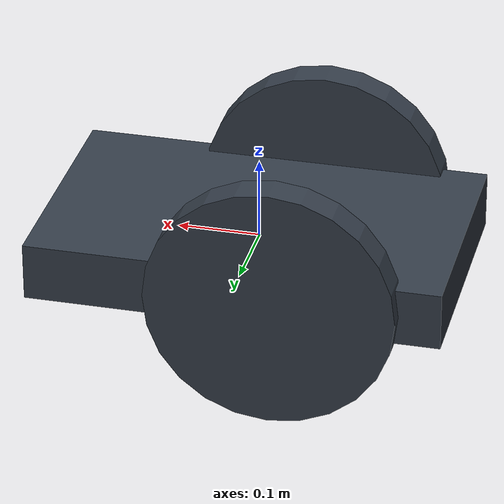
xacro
<?xml version="1.0" ?>
<robot name="simple2wheeler" xmlns:xacro="http://www.ros.org/wiki/xacro">
    <material name="blue">
        <color rgba="0.203 0.238 0.285 1.0"/>
    </material>

    <gazebo reference="link_chassis">
        <material>Gazebo/Orange</material>
    </gazebo>

<!-- diff driven commandTopic on node mistä komennot luetaan, tänne ohjataan ".launch" tiedostossa data lähteestä. -->
    <gazebo>
        <plugin filename="libgazebo_ros_diff_drive.so" name="differential_drive_controller">
            <legacyMode>false</legacyMode>
            <alwaysOn>true</alwaysOn>
            <updateRate>20</updateRate>
            <rightJoint>joint_right_wheel</rightJoint>
            <leftJoint>joint_left_wheel</leftJoint>
            <wheelSeparation>0.2</wheelSeparation>
            <wheelDiameter>0.2</wheelDiameter>
            <torque>0.1</torque>
            <commandTopic>cmd_vel</commandTopic>
            <odometryTopic>odom</odometryTopic>
            <odometryFrame>odom</odometryFrame>
            <robotBaseFrame>link_chassis</robotBaseFrame>
        </plugin>
    </gazebo>
    <link name="link_chassis">
        <pose>0 0 0.1 0 0 0</pose>
        <inertial>
            <mass value="5"/>
            <origin rpy="0 0 0" xyz="0 0 0.1"/>
            <inertia ixx="0.03954" ixy="0" ixz="0" iyy="0.1062" iyz="0" izz="0.1062"/>
        </inertial>
        <collision name="collision_chassis">
            <geometry>
                <box size="0.5 0.3 0.07"/>
            </geometry>
        </collision>
        <visual>
            <origin rpy="0 0 0" xyz="0 0 0"/>
            <geometry>
                <box size="0.5 0.3 0.07"/>
            </geometry>
            <material name="blue"/>
        </visual>
        <collision name="caster_front_collision">
            <origin rpy="0 0 0" xyz="0.35 0 -0.05"/>
            <geometry>
                <sphere radius="0.05"/>
            </geometry>
            <surface>
                <friction>
                    <ode>
                        <mu>0</mu>
                        <mu2>0</mu2>
                        <slip1>1.0</slip1>
                        <slip2>1.0</slip2>
                    </ode>
                </friction>
            </surface>
        </collision>
        <visual name="caster_front_visual">
            <origin rpy="0 0 0" xyz="0.2 0 -0.05"/>
            <geometry>
                <sphere radius="0.05"/>
            </geometry>
        </visual>
    </link>

    <link name="link_right_wheel">
        <inertial>
            <mass value="0.2"/>
            <origin rpy="0 1.5707 1.5707" xyz="0 0 0"/>
            <inertia ixx="0.0005266" ixy="0" ixz="0" iyy="0.0005266" iyz="0" izz="0.001"/>
        </inertial>
        <collision name="link_right_wheel_collision">
            <origin rpy="0 1.5707 1.5707" xyz="0 0 0"/>
            <geometry>
                <cylinder length="0.04" radius="0.15"/>
            </geometry>
        </collision>
        <visual>
            <origin rpy="0 1.5707 1.5707" xyz="0 0 0"/>
            <geometry>
                <cylinder length="0.04" radius="0.15"/>
            </geometry>
            <material name="blue"/>
        </visual>
    </link>
    <joint name="joint_right_wheel" type="continuous">
        <origin rpy="0 0 0" xyz="-0.05 -0.15 0 "/>
        <child link="link_right_wheel"/>
        <parent link="link_chassis"/>
        <axis rpy="0 0 0" xyz="0 1 0"/>
        <limit effort="10000" velocity="1000"/>
        <joint_properties damping="1.0" friction="1.0"/>
    </joint>

    <link name="link_left_wheel">
        <inertial>
            <mass value="0.2"/>
            <origin rpy="0 1.5707 1.5707" xyz="0 0 0"/>
            <inertia ixx="0.0005266" ixy="0" ixz="0" iyy="0.0005266" iyz="0" izz="0.001"/>
        </inertial>
        <collision name="link_left_wheel_collision">
            <origin rpy="0 1.5707 1.5707" xyz="0 0 0"/>
            <geometry>
                <cylinder length="0.04" radius="0.15"/>
            </geometry>
        </collision>
        <visual>
            <origin rpy="0 1.5707 1.5707" xyz="0 0 0"/>
            <geometry>
                <cylinder length="0.04" radius="0.15"/>
            </geometry>
            <material name="blue"/>
        </visual>
    </link>

     <joint name="joint_left_wheel" type="continuous">
        <origin rpy="0 0 0" xyz="-0.05 0.15 0 "/>
        <child link="link_left_wheel"/>
        <parent link="link_chassis"/>
        <axis rpy="0 0 0" xyz="0 1 0"/>
        <limit effort="10000" velocity="1000"/>
        <joint_properties damping="1.0" friction="1.0"/>
    </joint>
</robot>
